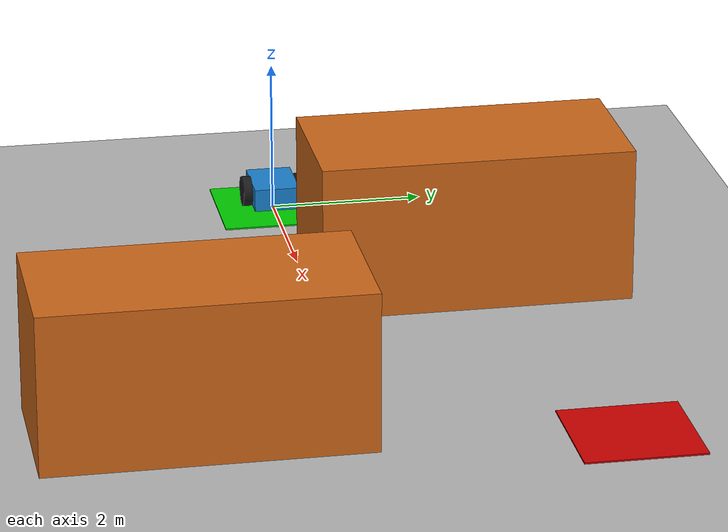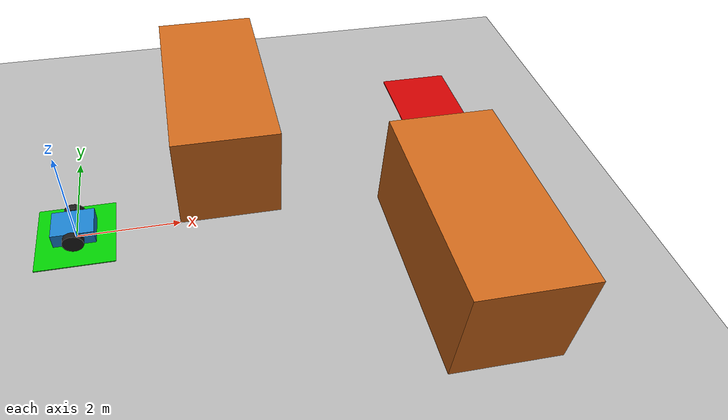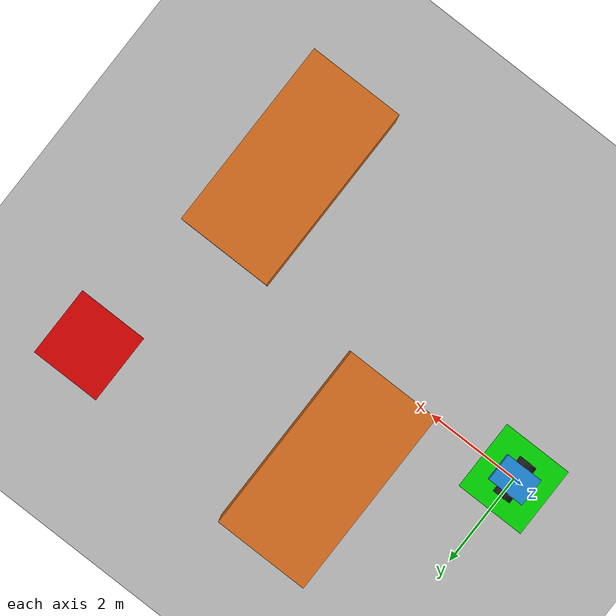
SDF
<?xml version="1.0" ?>
<sdf version="1.9">
  <world name="warehouse_world">

    <!-- PHYSICS & PLUGINS -->
    <physics name="1ms" type="ignored">
      <max_step_size>0.001</max_step_size>
      <real_time_factor>1.0</real_time_factor>
    </physics>
    <plugin filename="gz-sim-physics-system" name="gz::sim::systems::Physics"/>
    <plugin filename="gz-sim-user-commands-system" name="gz::sim::systems::UserCommands"/>
    <plugin filename="gz-sim-scene-broadcaster-system" name="gz::sim::systems::SceneBroadcaster"/>

    <!-- THIS PLUGIN FIXES THE BLACK COLORS IN VIRTUALBOX -->
    <plugin filename="gz-sim-sensors-system" name="gz::sim::systems::Sensors">
      <render_engine>ogre</render_engine>
    </plugin>

    <!-- BRIGHT DAYLIGHT SETTINGS -->
    <scene>
      <ambient>1.0 1.0 1.0 1</ambient>
      <background>0.8 0.9 1.0 1</background>
      <shadows>false</shadows>
    </scene>
    <light type="directional" name="sun">
      <diffuse>1 1 1 1</diffuse>
      <specular>0.5 0.5 0.5 1</specular>
      <direction>-0.5 0.5 -1</direction>
    </light>

    <!-- GROUND -->
    <model name="ground_plane">
      <static>true</static>
      <link name="link">
        <collision name="collision"><geometry><plane><normal>0 0 1</normal><size>30 30</size></plane></geometry></collision>
        <visual name="visual">
          <geometry><plane><normal>0 0 1</normal><size>30 30</size></plane></geometry>
          <material><ambient>0.7 0.7 0.7 1</ambient><diffuse>0.7 0.7 0.7 1</diffuse></material>
        </visual>
      </link>
    </model>

    <!-- WAREHOUSE STORAGE RACKS (Brown) -->
    <model name="rack_1">
      <static>true</static><pose>3 2 1 0 0 0</pose>
      <link name="link">
        <visual name="v"><geometry><box><size>2 4 2</size></box></geometry><material><ambient>0.8 0.4 0.1 1</ambient><diffuse>0.8 0.4 0.1 1</diffuse></material></visual>
        <collision name="c"><geometry><box><size>2 4 2</size></box></geometry></collision>
      </link>
    </model>

    <model name="rack_2">
      <static>true</static><pose>7 -2 1 0 0 0</pose>
      <link name="link">
        <visual name="v"><geometry><box><size>2 4 2</size></box></geometry><material><ambient>0.8 0.4 0.1 1</ambient><diffuse>0.8 0.4 0.1 1</diffuse></material></visual>
        <collision name="c"><geometry><box><size>2 4 2</size></box></geometry></collision>
      </link>
    </model>

    <!-- LOADING (Green) & UNLOADING ZONES (Red) -->
    <model name="loading_zone">
      <static>true</static><pose>0 0 0.01 0 0 0</pose>
      <link name="link"><visual name="v"><geometry><box><size>1.5 1.5 0.02</size></box></geometry><material><ambient>0.0 0.8 0.0 1</ambient><diffuse>0.0 0.8 0.0 1</diffuse></material></visual></link>
    </model>
    <model name="unloading_zone">
      <static>true</static><pose>8 3 0.01 0 0 0</pose>
      <link name="link"><visual name="v"><geometry><box><size>1.5 1.5 0.02</size></box></geometry><material><ambient>0.8 0.0 0.0 1</ambient><diffuse>0.8 0.0 0.0 1</diffuse></material></visual></link>
    </model>

    <!-- STABLE ROBOT MODEL (Blue) -->
    <model name="warehouse_robot">
      <pose>0 0 0.25 0 0 0</pose>
      <link name="base_link">
        <inertial><mass>1.0</mass><inertia><ixx>0.035</ixx><iyy>0.078</iyy><izz>0.095</izz></inertia></inertial>
        <collision name="c"><geometry><box><size>0.8 0.6 0.3</size></box></geometry></collision>
        <visual name="v"><geometry><box><size>0.8 0.6 0.3</size></box></geometry><material><ambient>0.1 0.5 0.8 1</ambient><diffuse>0.1 0.5 0.8 1</diffuse></material></visual>
      </link>

      <link name="left_wheel">
        <pose>0 0.36 0.0 0 0 0</pose>
        <inertial><mass>0.15</mass><inertia><ixx>0.003</ixx><iyy>0.003</iyy><izz>0.003</izz></inertia></inertial>
        <collision name="c"><pose>0 0 0 1.5708 0 0</pose><geometry><cylinder><radius>0.20</radius><length>0.12</length></cylinder></geometry><surface><friction><ode><mu>10</mu><mu2>10</mu2></ode></friction></surface></collision>
        <visual name="v"><pose>0 0 0 1.5708 0 0</pose><geometry><cylinder><radius>0.20</radius><length>0.12</length></cylinder></geometry><material><ambient>0.1 0.1 0.1 1</ambient><diffuse>0.1 0.1 0.1 1</diffuse></material></visual>
      </link>

      <link name="right_wheel">
        <pose>0 -0.36 0.0 0 0 0</pose>
        <inertial><mass>0.15</mass><inertia><ixx>0.003</ixx><iyy>0.003</iyy><izz>0.003</izz></inertia></inertial>
        <collision name="c"><pose>0 0 0 1.5708 0 0</pose><geometry><cylinder><radius>0.20</radius><length>0.12</length></cylinder></geometry><surface><friction><ode><mu>10</mu><mu2>10</mu2></ode></friction></surface></collision>
        <visual name="v"><pose>0 0 0 1.5708 0 0</pose><geometry><cylinder><radius>0.20</radius><length>0.12</length></cylinder></geometry><material><ambient>0.1 0.1 0.1 1</ambient><diffuse>0.1 0.1 0.1 1</diffuse></material></visual>
      </link>

      <link name="caster">
        <pose>-0.30 0 -0.12 0 0 0</pose>
        <inertial><mass>0.05</mass><inertia><ixx>0.0002</ixx><iyy>0.0002</iyy><izz>0.0002</izz></inertia></inertial>
        <collision name="c"><geometry><sphere><radius>0.08</radius></sphere></geometry><surface><friction><ode><mu>0.01</mu><mu2>0.01</mu2></ode></friction></surface></collision>
        <visual name="v"><geometry><sphere><radius>0.08</radius></sphere></geometry><material><ambient>0.3 0.3 0.3 1</ambient><diffuse>0.3 0.3 0.3 1</diffuse></material></visual>
      </link>

      <joint name="lwj" type="revolute"><parent>base_link</parent><child>left_wheel</child><axis><xyz>0 1 0</xyz></axis></joint>
      <joint name="rwj" type="revolute"><parent>base_link</parent><child>right_wheel</child><axis><xyz>0 1 0</xyz></axis></joint>
      <joint name="cj" type="fixed"><parent>base_link</parent><child>caster</child></joint>

      <plugin filename="gz-sim-diff-drive-system" name="gz::sim::systems::DiffDrive">
        <left_joint>lwj</left_joint>
        <right_joint>rwj</right_joint>
        <wheel_separation>0.72</wheel_separation>
        <wheel_radius>0.20</wheel_radius>
        <odom_publish_frequency>30</odom_publish_frequency>
        <odom_topic>/robot/odometry</odom_topic>
        <topic>/robot/cmd_vel</topic>
      </plugin>
    </model>
  </world>
</sdf>
